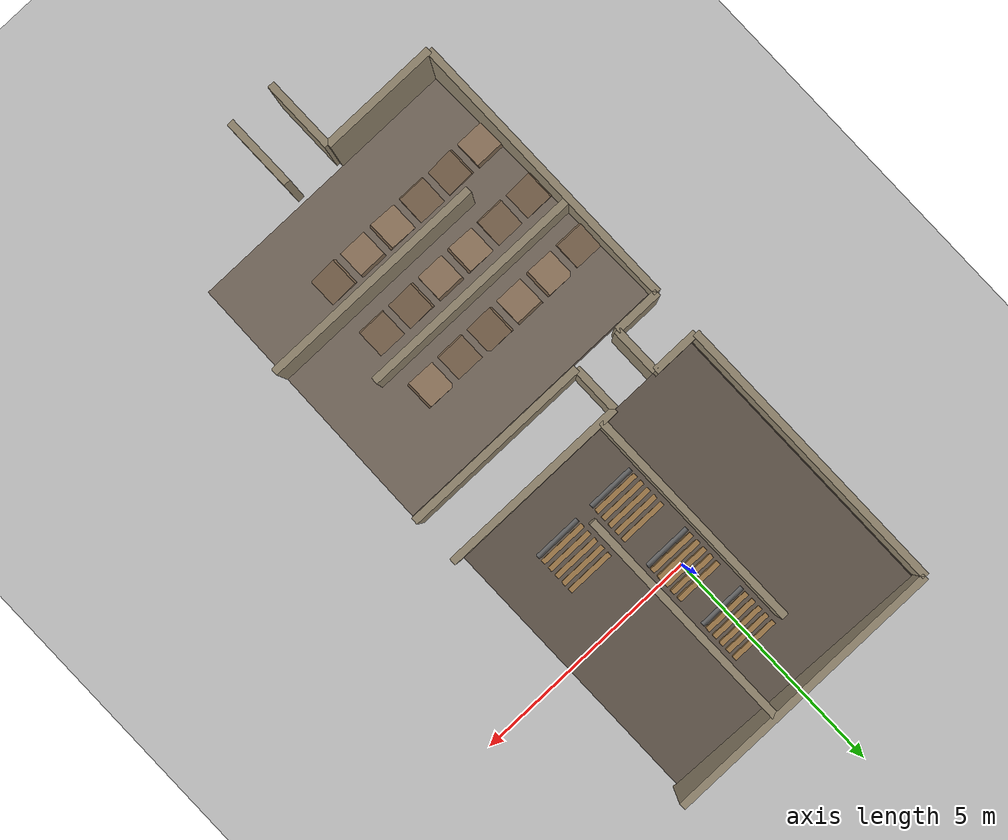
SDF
<sdf version="1.6">
 <world name="lrc_2025_atlanta">
  <model name="ground_plane">
   <static>true</static>
   <link name="link">
    <collision name="collision">
     <geometry><plane><normal>0 0 1</normal><size>50 50</size></plane></geometry>
    </collision>
    <visual name="visual">
     <geometry><plane><normal>0 0 1</normal><size>50 50</size></plane></geometry>
     <material><ambient>0.8 0.8 0.8 1</ambient><diffuse>0.8 0.8 0.8 1</diffuse></material>
    </visual>
   </link>
  </model>
  <model name="LA_S_a">
   <static>true</static>
   <pose>-1.7500 -10.0000 1.2500 0.0000 0.0000 0.0000</pose>
   <link name="link">
    <collision name="col"><geometry><box><size>2.5000 0.1500 2.5000</size></box></geometry></collision>
    <visual name="vis">
     <geometry><box><size>2.5000 0.1500 2.5000</size></box></geometry>
     <material><ambient>0.6 0.55 0.45 1.0</ambient><diffuse>0.6 0.55 0.45 1.0</diffuse></material>
    </visual>
   </link>
  </model>
  <model name="LA_N_a">
   <static>true</static>
   <pose>-2.5000 -4.0000 1.2500 0.0000 0.0000 0.0000</pose>
   <link name="link">
    <collision name="col"><geometry><box><size>1.0000 0.1500 2.5000</size></box></geometry></collision>
    <visual name="vis">
     <geometry><box><size>1.0000 0.1500 2.5000</size></box></geometry>
     <material><ambient>0.6 0.55 0.45 1.0</ambient><diffuse>0.6 0.55 0.45 1.0</diffuse></material>
    </visual>
   </link>
  </model>
  <model name="LA_N_b">
   <static>true</static>
   <pose>1.0000 -4.0000 1.2500 0.0000 0.0000 0.0000</pose>
   <link name="link">
    <collision name="col"><geometry><box><size>4.0000 0.1500 2.5000</size></box></geometry></collision>
    <visual name="vis">
     <geometry><box><size>4.0000 0.1500 2.5000</size></box></geometry>
     <material><ambient>0.6 0.55 0.45 1.0</ambient><diffuse>0.6 0.55 0.45 1.0</diffuse></material>
    </visual>
   </link>
  </model>
  <model name="LA_W">
   <static>true</static>
   <pose>-3.0000 -7.0000 1.2500 0.0000 0.0000 0.0000</pose>
   <link name="link">
    <collision name="col"><geometry><box><size>0.1500 6.0000 2.5000</size></box></geometry></collision>
    <visual name="vis">
     <geometry><box><size>0.1500 6.0000 2.5000</size></box></geometry>
     <material><ambient>0.6 0.55 0.45 1.0</ambient><diffuse>0.6 0.55 0.45 1.0</diffuse></material>
    </visual>
   </link>
  </model>
  <model name="LA_d0">
   <static>true</static>
   <pose>0.6000 -7.6750 1.2500 0.0000 0.0000 0.0000</pose>
   <link name="link">
    <collision name="col"><geometry><box><size>4.8000 0.1500 2.5000</size></box></geometry></collision>
    <visual name="vis">
     <geometry><box><size>4.8000 0.1500 2.5000</size></box></geometry>
     <material><ambient>0.6 0.55 0.45 1.0</ambient><diffuse>0.6 0.55 0.45 1.0</diffuse></material>
    </visual>
   </link>
  </model>
  <model name="LA_d1">
   <static>true</static>
   <pose>-0.6000 -6.3250 1.2500 0.0000 0.0000 0.0000</pose>
   <link name="link">
    <collision name="col"><geometry><box><size>4.8000 0.1500 2.5000</size></box></geometry></collision>
    <visual name="vis">
     <geometry><box><size>4.8000 0.1500 2.5000</size></box></geometry>
     <material><ambient>0.6 0.55 0.45 1.0</ambient><diffuse>0.6 0.55 0.45 1.0</diffuse></material>
    </visual>
   </link>
  </model>
  <model name="LA_floor">
   <static>true</static>
   <pose>0 -7 0.8248 0.2618 0 0</pose>
   <link name="link">
    <collision name="col"><geometry><box><size>6.0000 6.0000 0.1000</size></box></geometry></collision>
    <visual name="vis">
     <geometry><box><size>6.0000 6.0000 0.1000</size></box></geometry>
     <material><ambient>0.45 0.4 0.35 1.0</ambient><diffuse>0.45 0.4 0.35 1.0</diffuse></material>
    </visual>
   </link>
  </model>
  <model name="ramp_0_0">
   <static>true</static>
   <pose>-2.6250 -8.3500 0.6036 0.2618 0 0</pose>
   <link name="link">
    <collision name="col"><geometry><box><size>0.6000 0.6000 0.1600</size></box></geometry></collision>
    <visual name="vis">
     <geometry><box><size>0.6000 0.6000 0.1600</size></box></geometry>
     <material><ambient>0.55 0.45 0.35 1.0</ambient><diffuse>0.55 0.45 0.35 1.0</diffuse></material>
    </visual>
   </link>
  </model>
  <model name="ramp_0_1">
   <static>true</static>
   <pose>-1.8750 -8.3500 0.6036 0 0.2618 0</pose>
   <link name="link">
    <collision name="col"><geometry><box><size>0.6000 0.6000 0.1600</size></box></geometry></collision>
    <visual name="vis">
     <geometry><box><size>0.6000 0.6000 0.1600</size></box></geometry>
     <material><ambient>0.55 0.45 0.35 1.0</ambient><diffuse>0.55 0.45 0.35 1.0</diffuse></material>
    </visual>
   </link>
  </model>
  <model name="ramp_0_2">
   <static>true</static>
   <pose>-1.1250 -8.3500 0.6036 -0.2618 0 0</pose>
   <link name="link">
    <collision name="col"><geometry><box><size>0.6000 0.6000 0.1600</size></box></geometry></collision>
    <visual name="vis">
     <geometry><box><size>0.6000 0.6000 0.1600</size></box></geometry>
     <material><ambient>0.55 0.45 0.35 1.0</ambient><diffuse>0.55 0.45 0.35 1.0</diffuse></material>
    </visual>
   </link>
  </model>
  <model name="ramp_0_3">
   <static>true</static>
   <pose>-0.3750 -8.3500 0.6036 0 -0.2618 0</pose>
   <link name="link">
    <collision name="col"><geometry><box><size>0.6000 0.6000 0.1600</size></box></geometry></collision>
    <visual name="vis">
     <geometry><box><size>0.6000 0.6000 0.1600</size></box></geometry>
     <material><ambient>0.55 0.45 0.35 1.0</ambient><diffuse>0.55 0.45 0.35 1.0</diffuse></material>
    </visual>
   </link>
  </model>
  <model name="ramp_0_4">
   <static>true</static>
   <pose>0.3750 -8.3500 0.6036 0.2618 0 0</pose>
   <link name="link">
    <collision name="col"><geometry><box><size>0.6000 0.6000 0.1600</size></box></geometry></collision>
    <visual name="vis">
     <geometry><box><size>0.6000 0.6000 0.1600</size></box></geometry>
     <material><ambient>0.55 0.45 0.35 1.0</ambient><diffuse>0.55 0.45 0.35 1.0</diffuse></material>
    </visual>
   </link>
  </model>
  <model name="ramp_0_5">
   <static>true</static>
   <pose>1.1250 -8.3500 0.6036 0 0.2618 0</pose>
   <link name="link">
    <collision name="col"><geometry><box><size>0.6000 0.6000 0.1600</size></box></geometry></collision>
    <visual name="vis">
     <geometry><box><size>0.6000 0.6000 0.1600</size></box></geometry>
     <material><ambient>0.55 0.45 0.35 1.0</ambient><diffuse>0.55 0.45 0.35 1.0</diffuse></material>
    </visual>
   </link>
  </model>
  <model name="ramp_1_0">
   <static>true</static>
   <pose>-2.6250 -7.0000 0.9530 0 0.2618 0</pose>
   <link name="link">
    <collision name="col"><geometry><box><size>0.6000 0.6000 0.1600</size></box></geometry></collision>
    <visual name="vis">
     <geometry><box><size>0.6000 0.6000 0.1600</size></box></geometry>
     <material><ambient>0.55 0.45 0.35 1.0</ambient><diffuse>0.55 0.45 0.35 1.0</diffuse></material>
    </visual>
   </link>
  </model>
  <model name="ramp_1_1">
   <static>true</static>
   <pose>-1.8750 -7.0000 0.9530 -0.2618 0 0</pose>
   <link name="link">
    <collision name="col"><geometry><box><size>0.6000 0.6000 0.1600</size></box></geometry></collision>
    <visual name="vis">
     <geometry><box><size>0.6000 0.6000 0.1600</size></box></geometry>
     <material><ambient>0.55 0.45 0.35 1.0</ambient><diffuse>0.55 0.45 0.35 1.0</diffuse></material>
    </visual>
   </link>
  </model>
  <model name="ramp_1_2">
   <static>true</static>
   <pose>-1.1250 -7.0000 0.9530 0 -0.2618 0</pose>
   <link name="link">
    <collision name="col"><geometry><box><size>0.6000 0.6000 0.1600</size></box></geometry></collision>
    <visual name="vis">
     <geometry><box><size>0.6000 0.6000 0.1600</size></box></geometry>
     <material><ambient>0.55 0.45 0.35 1.0</ambient><diffuse>0.55 0.45 0.35 1.0</diffuse></material>
    </visual>
   </link>
  </model>
  <model name="ramp_1_3">
   <static>true</static>
   <pose>-0.3750 -7.0000 0.9530 0.2618 0 0</pose>
   <link name="link">
    <collision name="col"><geometry><box><size>0.6000 0.6000 0.1600</size></box></geometry></collision>
    <visual name="vis">
     <geometry><box><size>0.6000 0.6000 0.1600</size></box></geometry>
     <material><ambient>0.55 0.45 0.35 1.0</ambient><diffuse>0.55 0.45 0.35 1.0</diffuse></material>
    </visual>
   </link>
  </model>
  <model name="ramp_1_4">
   <static>true</static>
   <pose>0.3750 -7.0000 0.9530 0 0.2618 0</pose>
   <link name="link">
    <collision name="col"><geometry><box><size>0.6000 0.6000 0.1600</size></box></geometry></collision>
    <visual name="vis">
     <geometry><box><size>0.6000 0.6000 0.1600</size></box></geometry>
     <material><ambient>0.55 0.45 0.35 1.0</ambient><diffuse>0.55 0.45 0.35 1.0</diffuse></material>
    </visual>
   </link>
  </model>
  <model name="ramp_1_5">
   <static>true</static>
   <pose>1.1250 -7.0000 0.9530 -0.2618 0 0</pose>
   <link name="link">
    <collision name="col"><geometry><box><size>0.6000 0.6000 0.1600</size></box></geometry></collision>
    <visual name="vis">
     <geometry><box><size>0.6000 0.6000 0.1600</size></box></geometry>
     <material><ambient>0.55 0.45 0.35 1.0</ambient><diffuse>0.55 0.45 0.35 1.0</diffuse></material>
    </visual>
   </link>
  </model>
  <model name="ramp_2_0">
   <static>true</static>
   <pose>-2.6250 -5.6500 1.3025 -0.2618 0 0</pose>
   <link name="link">
    <collision name="col"><geometry><box><size>0.6000 0.6000 0.1600</size></box></geometry></collision>
    <visual name="vis">
     <geometry><box><size>0.6000 0.6000 0.1600</size></box></geometry>
     <material><ambient>0.55 0.45 0.35 1.0</ambient><diffuse>0.55 0.45 0.35 1.0</diffuse></material>
    </visual>
   </link>
  </model>
  <model name="ramp_2_1">
   <static>true</static>
   <pose>-1.8750 -5.6500 1.3025 0 -0.2618 0</pose>
   <link name="link">
    <collision name="col"><geometry><box><size>0.6000 0.6000 0.1600</size></box></geometry></collision>
    <visual name="vis">
     <geometry><box><size>0.6000 0.6000 0.1600</size></box></geometry>
     <material><ambient>0.55 0.45 0.35 1.0</ambient><diffuse>0.55 0.45 0.35 1.0</diffuse></material>
    </visual>
   </link>
  </model>
  <model name="ramp_2_2">
   <static>true</static>
   <pose>-1.1250 -5.6500 1.3025 0.2618 0 0</pose>
   <link name="link">
    <collision name="col"><geometry><box><size>0.6000 0.6000 0.1600</size></box></geometry></collision>
    <visual name="vis">
     <geometry><box><size>0.6000 0.6000 0.1600</size></box></geometry>
     <material><ambient>0.55 0.45 0.35 1.0</ambient><diffuse>0.55 0.45 0.35 1.0</diffuse></material>
    </visual>
   </link>
  </model>
  <model name="ramp_2_3">
   <static>true</static>
   <pose>-0.3750 -5.6500 1.3025 0 0.2618 0</pose>
   <link name="link">
    <collision name="col"><geometry><box><size>0.6000 0.6000 0.1600</size></box></geometry></collision>
    <visual name="vis">
     <geometry><box><size>0.6000 0.6000 0.1600</size></box></geometry>
     <material><ambient>0.55 0.45 0.35 1.0</ambient><diffuse>0.55 0.45 0.35 1.0</diffuse></material>
    </visual>
   </link>
  </model>
  <model name="ramp_2_4">
   <static>true</static>
   <pose>0.3750 -5.6500 1.3025 -0.2618 0 0</pose>
   <link name="link">
    <collision name="col"><geometry><box><size>0.6000 0.6000 0.1600</size></box></geometry></collision>
    <visual name="vis">
     <geometry><box><size>0.6000 0.6000 0.1600</size></box></geometry>
     <material><ambient>0.55 0.45 0.35 1.0</ambient><diffuse>0.55 0.45 0.35 1.0</diffuse></material>
    </visual>
   </link>
  </model>
  <model name="ramp_2_5">
   <static>true</static>
   <pose>1.1250 -5.6500 1.3025 0 -0.2618 0</pose>
   <link name="link">
    <collision name="col"><geometry><box><size>0.6000 0.6000 0.1600</size></box></geometry></collision>
    <visual name="vis">
     <geometry><box><size>0.6000 0.6000 0.1600</size></box></geometry>
     <material><ambient>0.55 0.45 0.35 1.0</ambient><diffuse>0.55 0.45 0.35 1.0</diffuse></material>
    </visual>
   </link>
  </model>
  <model name="qr_A">
   <static>true</static>
   <pose>-2.8500 -7 0.6000 0.0000 0.0000 0.0000</pose>
   <link name="link">
    <collision name="col"><geometry><box><size>0.0200 0.1500 0.1500</size></box></geometry></collision>
    <visual name="vis">
     <geometry><box><size>0.0200 0.1500 0.1500</size></box></geometry>
     <material><ambient>0.0 0.8 0.0 1.0</ambient><diffuse>0.0 0.8 0.0 1.0</diffuse></material>
    </visual>
   </link>
  </model>
  <model name="LC_S_a">
   <static>true</static>
   <pose>-2.5000 -3.0000 1.2500 0.0000 0.0000 0.0000</pose>
   <link name="link">
    <collision name="col"><geometry><box><size>1.0000 0.1500 2.5000</size></box></geometry></collision>
    <visual name="vis">
     <geometry><box><size>1.0000 0.1500 2.5000</size></box></geometry>
     <material><ambient>0.6 0.55 0.45 1.0</ambient><diffuse>0.6 0.55 0.45 1.0</diffuse></material>
    </visual>
   </link>
  </model>
  <model name="LC_S_b">
   <static>true</static>
   <pose>1.0000 -3.0000 1.2500 0.0000 0.0000 0.0000</pose>
   <link name="link">
    <collision name="col"><geometry><box><size>4.0000 0.1500 2.5000</size></box></geometry></collision>
    <visual name="vis">
     <geometry><box><size>4.0000 0.1500 2.5000</size></box></geometry>
     <material><ambient>0.6 0.55 0.45 1.0</ambient><diffuse>0.6 0.55 0.45 1.0</diffuse></material>
    </visual>
   </link>
  </model>
  <model name="LC_N">
   <static>true</static>
   <pose>0.0000 3.0000 1.2500 0.0000 0.0000 0.0000</pose>
   <link name="link">
    <collision name="col"><geometry><box><size>6.0000 0.1500 2.5000</size></box></geometry></collision>
    <visual name="vis">
     <geometry><box><size>6.0000 0.1500 2.5000</size></box></geometry>
     <material><ambient>0.6 0.55 0.45 1.0</ambient><diffuse>0.6 0.55 0.45 1.0</diffuse></material>
    </visual>
   </link>
  </model>
  <model name="LC_W">
   <static>true</static>
   <pose>-3.0000 0.0000 1.2500 0.0000 0.0000 0.0000</pose>
   <link name="link">
    <collision name="col"><geometry><box><size>0.1500 6.0000 2.5000</size></box></geometry></collision>
    <visual name="vis">
     <geometry><box><size>0.1500 6.0000 2.5000</size></box></geometry>
     <material><ambient>0.6 0.55 0.45 1.0</ambient><diffuse>0.6 0.55 0.45 1.0</diffuse></material>
    </visual>
   </link>
  </model>
  <model name="LC_d0">
   <static>true</static>
   <pose>-0.6750 -0.6000 1.2500 0.0000 0.0000 0.0000</pose>
   <link name="link">
    <collision name="col"><geometry><box><size>0.1500 4.8000 2.5000</size></box></geometry></collision>
    <visual name="vis">
     <geometry><box><size>0.1500 4.8000 2.5000</size></box></geometry>
     <material><ambient>0.6 0.55 0.45 1.0</ambient><diffuse>0.6 0.55 0.45 1.0</diffuse></material>
    </visual>
   </link>
  </model>
  <model name="LC_d1">
   <static>true</static>
   <pose>0.6750 0.6000 1.2500 0.0000 0.0000 0.0000</pose>
   <link name="link">
    <collision name="col"><geometry><box><size>0.1500 4.8000 2.5000</size></box></geometry></collision>
    <visual name="vis">
     <geometry><box><size>0.1500 4.8000 2.5000</size></box></geometry>
     <material><ambient>0.6 0.55 0.45 1.0</ambient><diffuse>0.6 0.55 0.45 1.0</diffuse></material>
    </visual>
   </link>
  </model>
  <model name="LC_floor">
   <static>true</static>
   <pose>0 0 0.8248 0 0.2618 0</pose>
   <link name="link">
    <collision name="col"><geometry><box><size>6.0000 6.0000 0.1000</size></box></geometry></collision>
    <visual name="vis">
     <geometry><box><size>6.0000 6.0000 0.1000</size></box></geometry>
     <material><ambient>0.45 0.4 0.35 1.0</ambient><diffuse>0.45 0.4 0.35 1.0</diffuse></material>
    </visual>
   </link>
  </model>
  <model name="plt_0_0_0">
   <static>true</static>
   <pose>-1.3500 -1.8600 0.6236 0.0000 0.0000 0.0000</pose>
   <link name="link">
    <collision name="col"><geometry><box><size>1.0000 0.1000 0.2000</size></box></geometry></collision>
    <visual name="vis">
     <geometry><box><size>1.0000 0.1000 0.2000</size></box></geometry>
     <material><ambient>0.65 0.5 0.3 1.0</ambient><diffuse>0.65 0.5 0.3 1.0</diffuse></material>
    </visual>
   </link>
  </model>
  <model name="plt_0_0_1">
   <static>true</static>
   <pose>-1.3500 -1.6800 0.6236 0.0000 0.0000 0.0000</pose>
   <link name="link">
    <collision name="col"><geometry><box><size>1.0000 0.1000 0.2000</size></box></geometry></collision>
    <visual name="vis">
     <geometry><box><size>1.0000 0.1000 0.2000</size></box></geometry>
     <material><ambient>0.65 0.5 0.3 1.0</ambient><diffuse>0.65 0.5 0.3 1.0</diffuse></material>
    </visual>
   </link>
  </model>
  <model name="plt_0_0_2">
   <static>true</static>
   <pose>-1.3500 -1.5000 0.6236 0.0000 0.0000 0.0000</pose>
   <link name="link">
    <collision name="col"><geometry><box><size>1.0000 0.1000 0.2000</size></box></geometry></collision>
    <visual name="vis">
     <geometry><box><size>1.0000 0.1000 0.2000</size></box></geometry>
     <material><ambient>0.65 0.5 0.3 1.0</ambient><diffuse>0.65 0.5 0.3 1.0</diffuse></material>
    </visual>
   </link>
  </model>
  <model name="plt_0_0_3">
   <static>true</static>
   <pose>-1.3500 -1.3200 0.6236 0.0000 0.0000 0.0000</pose>
   <link name="link">
    <collision name="col"><geometry><box><size>1.0000 0.1000 0.2000</size></box></geometry></collision>
    <visual name="vis">
     <geometry><box><size>1.0000 0.1000 0.2000</size></box></geometry>
     <material><ambient>0.65 0.5 0.3 1.0</ambient><diffuse>0.65 0.5 0.3 1.0</diffuse></material>
    </visual>
   </link>
  </model>
  <model name="plt_0_0_4">
   <static>true</static>
   <pose>-1.3500 -1.1400 0.6236 0.0000 0.0000 0.0000</pose>
   <link name="link">
    <collision name="col"><geometry><box><size>1.0000 0.1000 0.2000</size></box></geometry></collision>
    <visual name="vis">
     <geometry><box><size>1.0000 0.1000 0.2000</size></box></geometry>
     <material><ambient>0.65 0.5 0.3 1.0</ambient><diffuse>0.65 0.5 0.3 1.0</diffuse></material>
    </visual>
   </link>
  </model>
  <model name="pipe_0_0">
   <static>true</static>
   <pose>-1.3500 -2.0000 0.7736 0 1.5708 0</pose>
   <link name="link">
    <collision name="col">
     <geometry><cylinder><radius>0.05</radius><length>1.0</length></cylinder></geometry>
    </collision>
    <visual name="vis">
     <geometry><cylinder><radius>0.05</radius><length>1.0</length></cylinder></geometry>
     <material><ambient>0.4 0.4 0.4 1.0</ambient><diffuse>0.4 0.4 0.4 1.0</diffuse></material>
    </visual>
   </link>
  </model>
  <model name="plt_0_1_0">
   <static>true</static>
   <pose>-1.3500 -0.3600 0.7236 0.0000 0.0000 0.0000</pose>
   <link name="link">
    <collision name="col"><geometry><box><size>1.0000 0.1000 0.4000</size></box></geometry></collision>
    <visual name="vis">
     <geometry><box><size>1.0000 0.1000 0.4000</size></box></geometry>
     <material><ambient>0.65 0.5 0.3 1.0</ambient><diffuse>0.65 0.5 0.3 1.0</diffuse></material>
    </visual>
   </link>
  </model>
  <model name="plt_0_1_1">
   <static>true</static>
   <pose>-1.3500 -0.1800 0.7236 0.0000 0.0000 0.0000</pose>
   <link name="link">
    <collision name="col"><geometry><box><size>1.0000 0.1000 0.4000</size></box></geometry></collision>
    <visual name="vis">
     <geometry><box><size>1.0000 0.1000 0.4000</size></box></geometry>
     <material><ambient>0.65 0.5 0.3 1.0</ambient><diffuse>0.65 0.5 0.3 1.0</diffuse></material>
    </visual>
   </link>
  </model>
  <model name="plt_0_1_2">
   <static>true</static>
   <pose>-1.3500 0.0000 0.7236 0.0000 0.0000 0.0000</pose>
   <link name="link">
    <collision name="col"><geometry><box><size>1.0000 0.1000 0.4000</size></box></geometry></collision>
    <visual name="vis">
     <geometry><box><size>1.0000 0.1000 0.4000</size></box></geometry>
     <material><ambient>0.65 0.5 0.3 1.0</ambient><diffuse>0.65 0.5 0.3 1.0</diffuse></material>
    </visual>
   </link>
  </model>
  <model name="plt_0_1_3">
   <static>true</static>
   <pose>-1.3500 0.1800 0.7236 0.0000 0.0000 0.0000</pose>
   <link name="link">
    <collision name="col"><geometry><box><size>1.0000 0.1000 0.4000</size></box></geometry></collision>
    <visual name="vis">
     <geometry><box><size>1.0000 0.1000 0.4000</size></box></geometry>
     <material><ambient>0.65 0.5 0.3 1.0</ambient><diffuse>0.65 0.5 0.3 1.0</diffuse></material>
    </visual>
   </link>
  </model>
  <model name="plt_0_1_4">
   <static>true</static>
   <pose>-1.3500 0.3600 0.7236 0.0000 0.0000 0.0000</pose>
   <link name="link">
    <collision name="col"><geometry><box><size>1.0000 0.1000 0.4000</size></box></geometry></collision>
    <visual name="vis">
     <geometry><box><size>1.0000 0.1000 0.4000</size></box></geometry>
     <material><ambient>0.65 0.5 0.3 1.0</ambient><diffuse>0.65 0.5 0.3 1.0</diffuse></material>
    </visual>
   </link>
  </model>
  <model name="pipe_0_1">
   <static>true</static>
   <pose>-1.3500 -0.5000 0.9736 0 1.5708 0</pose>
   <link name="link">
    <collision name="col">
     <geometry><cylinder><radius>0.05</radius><length>1.0</length></cylinder></geometry>
    </collision>
    <visual name="vis">
     <geometry><cylinder><radius>0.05</radius><length>1.0</length></cylinder></geometry>
     <material><ambient>0.4 0.4 0.4 1.0</ambient><diffuse>0.4 0.4 0.4 1.0</diffuse></material>
    </visual>
   </link>
  </model>
  <model name="plt_0_2_0">
   <static>true</static>
   <pose>-1.3500 1.1400 0.6236 0.0000 0.0000 0.0000</pose>
   <link name="link">
    <collision name="col"><geometry><box><size>1.0000 0.1000 0.2000</size></box></geometry></collision>
    <visual name="vis">
     <geometry><box><size>1.0000 0.1000 0.2000</size></box></geometry>
     <material><ambient>0.65 0.5 0.3 1.0</ambient><diffuse>0.65 0.5 0.3 1.0</diffuse></material>
    </visual>
   </link>
  </model>
  <model name="plt_0_2_1">
   <static>true</static>
   <pose>-1.3500 1.3200 0.6236 0.0000 0.0000 0.0000</pose>
   <link name="link">
    <collision name="col"><geometry><box><size>1.0000 0.1000 0.2000</size></box></geometry></collision>
    <visual name="vis">
     <geometry><box><size>1.0000 0.1000 0.2000</size></box></geometry>
     <material><ambient>0.65 0.5 0.3 1.0</ambient><diffuse>0.65 0.5 0.3 1.0</diffuse></material>
    </visual>
   </link>
  </model>
  <model name="plt_0_2_2">
   <static>true</static>
   <pose>-1.3500 1.5000 0.6236 0.0000 0.0000 0.0000</pose>
   <link name="link">
    <collision name="col"><geometry><box><size>1.0000 0.1000 0.2000</size></box></geometry></collision>
    <visual name="vis">
     <geometry><box><size>1.0000 0.1000 0.2000</size></box></geometry>
     <material><ambient>0.65 0.5 0.3 1.0</ambient><diffuse>0.65 0.5 0.3 1.0</diffuse></material>
    </visual>
   </link>
  </model>
  <model name="plt_0_2_3">
   <static>true</static>
   <pose>-1.3500 1.6800 0.6236 0.0000 0.0000 0.0000</pose>
   <link name="link">
    <collision name="col"><geometry><box><size>1.0000 0.1000 0.2000</size></box></geometry></collision>
    <visual name="vis">
     <geometry><box><size>1.0000 0.1000 0.2000</size></box></geometry>
     <material><ambient>0.65 0.5 0.3 1.0</ambient><diffuse>0.65 0.5 0.3 1.0</diffuse></material>
    </visual>
   </link>
  </model>
  <model name="plt_0_2_4">
   <static>true</static>
   <pose>-1.3500 1.8600 0.6236 0.0000 0.0000 0.0000</pose>
   <link name="link">
    <collision name="col"><geometry><box><size>1.0000 0.1000 0.2000</size></box></geometry></collision>
    <visual name="vis">
     <geometry><box><size>1.0000 0.1000 0.2000</size></box></geometry>
     <material><ambient>0.65 0.5 0.3 1.0</ambient><diffuse>0.65 0.5 0.3 1.0</diffuse></material>
    </visual>
   </link>
  </model>
  <model name="pipe_0_2">
   <static>true</static>
   <pose>-1.3500 1.0000 0.7736 0 1.5708 0</pose>
   <link name="link">
    <collision name="col">
     <geometry><cylinder><radius>0.05</radius><length>1.0</length></cylinder></geometry>
    </collision>
    <visual name="vis">
     <geometry><cylinder><radius>0.05</radius><length>1.0</length></cylinder></geometry>
     <material><ambient>0.4 0.4 0.4 1.0</ambient><diffuse>0.4 0.4 0.4 1.0</diffuse></material>
    </visual>
   </link>
  </model>
  <model name="plt_1_0_0">
   <static>true</static>
   <pose>0.0000 -1.8600 0.9730 0.0000 0.0000 0.0000</pose>
   <link name="link">
    <collision name="col"><geometry><box><size>1.0000 0.1000 0.2000</size></box></geometry></collision>
    <visual name="vis">
     <geometry><box><size>1.0000 0.1000 0.2000</size></box></geometry>
     <material><ambient>0.65 0.5 0.3 1.0</ambient><diffuse>0.65 0.5 0.3 1.0</diffuse></material>
    </visual>
   </link>
  </model>
  <model name="plt_1_0_1">
   <static>true</static>
   <pose>0.0000 -1.6800 0.9730 0.0000 0.0000 0.0000</pose>
   <link name="link">
    <collision name="col"><geometry><box><size>1.0000 0.1000 0.2000</size></box></geometry></collision>
    <visual name="vis">
     <geometry><box><size>1.0000 0.1000 0.2000</size></box></geometry>
     <material><ambient>0.65 0.5 0.3 1.0</ambient><diffuse>0.65 0.5 0.3 1.0</diffuse></material>
    </visual>
   </link>
  </model>
  <model name="plt_1_0_2">
   <static>true</static>
   <pose>0.0000 -1.5000 0.9730 0.0000 0.0000 0.0000</pose>
   <link name="link">
    <collision name="col"><geometry><box><size>1.0000 0.1000 0.2000</size></box></geometry></collision>
    <visual name="vis">
     <geometry><box><size>1.0000 0.1000 0.2000</size></box></geometry>
     <material><ambient>0.65 0.5 0.3 1.0</ambient><diffuse>0.65 0.5 0.3 1.0</diffuse></material>
    </visual>
   </link>
  </model>
  <model name="plt_1_0_3">
   <static>true</static>
   <pose>0.0000 -1.3200 0.9730 0.0000 0.0000 0.0000</pose>
   <link name="link">
    <collision name="col"><geometry><box><size>1.0000 0.1000 0.2000</size></box></geometry></collision>
    <visual name="vis">
     <geometry><box><size>1.0000 0.1000 0.2000</size></box></geometry>
     <material><ambient>0.65 0.5 0.3 1.0</ambient><diffuse>0.65 0.5 0.3 1.0</diffuse></material>
    </visual>
   </link>
  </model>
  <model name="plt_1_0_4">
   <static>true</static>
   <pose>0.0000 -1.1400 0.9730 0.0000 0.0000 0.0000</pose>
   <link name="link">
    <collision name="col"><geometry><box><size>1.0000 0.1000 0.2000</size></box></geometry></collision>
    <visual name="vis">
     <geometry><box><size>1.0000 0.1000 0.2000</size></box></geometry>
     <material><ambient>0.65 0.5 0.3 1.0</ambient><diffuse>0.65 0.5 0.3 1.0</diffuse></material>
    </visual>
   </link>
  </model>
  <model name="pipe_1_0">
   <static>true</static>
   <pose>0.0000 -2.0000 1.1230 0 1.5708 0</pose>
   <link name="link">
    <collision name="col">
     <geometry><cylinder><radius>0.05</radius><length>1.0</length></cylinder></geometry>
    </collision>
    <visual name="vis">
     <geometry><cylinder><radius>0.05</radius><length>1.0</length></cylinder></geometry>
     <material><ambient>0.4 0.4 0.4 1.0</ambient><diffuse>0.4 0.4 0.4 1.0</diffuse></material>
    </visual>
   </link>
  </model>
  <model name="plt_1_1_0">
   <static>true</static>
   <pose>0.0000 -0.3600 1.0730 0.0000 0.0000 0.0000</pose>
   <link name="link">
    <collision name="col"><geometry><box><size>1.0000 0.1000 0.4000</size></box></geometry></collision>
    <visual name="vis">
     <geometry><box><size>1.0000 0.1000 0.4000</size></box></geometry>
     <material><ambient>0.65 0.5 0.3 1.0</ambient><diffuse>0.65 0.5 0.3 1.0</diffuse></material>
    </visual>
   </link>
  </model>
  <model name="plt_1_1_1">
   <static>true</static>
   <pose>0.0000 -0.1800 1.0730 0.0000 0.0000 0.0000</pose>
   <link name="link">
    <collision name="col"><geometry><box><size>1.0000 0.1000 0.4000</size></box></geometry></collision>
    <visual name="vis">
     <geometry><box><size>1.0000 0.1000 0.4000</size></box></geometry>
     <material><ambient>0.65 0.5 0.3 1.0</ambient><diffuse>0.65 0.5 0.3 1.0</diffuse></material>
    </visual>
   </link>
  </model>
  <model name="plt_1_1_2">
   <static>true</static>
   <pose>0.0000 0.0000 1.0730 0.0000 0.0000 0.0000</pose>
   <link name="link">
    <collision name="col"><geometry><box><size>1.0000 0.1000 0.4000</size></box></geometry></collision>
    <visual name="vis">
     <geometry><box><size>1.0000 0.1000 0.4000</size></box></geometry>
     <material><ambient>0.65 0.5 0.3 1.0</ambient><diffuse>0.65 0.5 0.3 1.0</diffuse></material>
    </visual>
   </link>
  </model>
  <model name="plt_1_1_3">
   <static>true</static>
   <pose>0.0000 0.1800 1.0730 0.0000 0.0000 0.0000</pose>
   <link name="link">
    <collision name="col"><geometry><box><size>1.0000 0.1000 0.4000</size></box></geometry></collision>
    <visual name="vis">
     <geometry><box><size>1.0000 0.1000 0.4000</size></box></geometry>
     <material><ambient>0.65 0.5 0.3 1.0</ambient><diffuse>0.65 0.5 0.3 1.0</diffuse></material>
    </visual>
   </link>
  </model>
  <model name="plt_1_1_4">
   <static>true</static>
   <pose>0.0000 0.3600 1.0730 0.0000 0.0000 0.0000</pose>
   <link name="link">
    <collision name="col"><geometry><box><size>1.0000 0.1000 0.4000</size></box></geometry></collision>
    <visual name="vis">
     <geometry><box><size>1.0000 0.1000 0.4000</size></box></geometry>
     <material><ambient>0.65 0.5 0.3 1.0</ambient><diffuse>0.65 0.5 0.3 1.0</diffuse></material>
    </visual>
   </link>
  </model>
  <model name="pipe_1_1">
   <static>true</static>
   <pose>0.0000 -0.5000 1.3230 0 1.5708 0</pose>
   <link name="link">
    <collision name="col">
     <geometry><cylinder><radius>0.05</radius><length>1.0</length></cylinder></geometry>
    </collision>
    <visual name="vis">
     <geometry><cylinder><radius>0.05</radius><length>1.0</length></cylinder></geometry>
     <material><ambient>0.4 0.4 0.4 1.0</ambient><diffuse>0.4 0.4 0.4 1.0</diffuse></material>
    </visual>
   </link>
  </model>
  <model name="plt_1_2_0">
   <static>true</static>
   <pose>0.0000 1.1400 0.9730 0.0000 0.0000 0.0000</pose>
   <link name="link">
    <collision name="col"><geometry><box><size>1.0000 0.1000 0.2000</size></box></geometry></collision>
    <visual name="vis">
     <geometry><box><size>1.0000 0.1000 0.2000</size></box></geometry>
     <material><ambient>0.65 0.5 0.3 1.0</ambient><diffuse>0.65 0.5 0.3 1.0</diffuse></material>
    </visual>
   </link>
  </model>
  <model name="plt_1_2_1">
   <static>true</static>
   <pose>0.0000 1.3200 0.9730 0.0000 0.0000 0.0000</pose>
   <link name="link">
    <collision name="col"><geometry><box><size>1.0000 0.1000 0.2000</size></box></geometry></collision>
    <visual name="vis">
     <geometry><box><size>1.0000 0.1000 0.2000</size></box></geometry>
     <material><ambient>0.65 0.5 0.3 1.0</ambient><diffuse>0.65 0.5 0.3 1.0</diffuse></material>
    </visual>
   </link>
  </model>
  <model name="plt_1_2_2">
   <static>true</static>
   <pose>0.0000 1.5000 0.9730 0.0000 0.0000 0.0000</pose>
   <link name="link">
    <collision name="col"><geometry><box><size>1.0000 0.1000 0.2000</size></box></geometry></collision>
    <visual name="vis">
     <geometry><box><size>1.0000 0.1000 0.2000</size></box></geometry>
     <material><ambient>0.65 0.5 0.3 1.0</ambient><diffuse>0.65 0.5 0.3 1.0</diffuse></material>
    </visual>
   </link>
  </model>
  <model name="plt_1_2_3">
   <static>true</static>
   <pose>0.0000 1.6800 0.9730 0.0000 0.0000 0.0000</pose>
   <link name="link">
    <collision name="col"><geometry><box><size>1.0000 0.1000 0.2000</size></box></geometry></collision>
    <visual name="vis">
     <geometry><box><size>1.0000 0.1000 0.2000</size></box></geometry>
     <material><ambient>0.65 0.5 0.3 1.0</ambient><diffuse>0.65 0.5 0.3 1.0</diffuse></material>
    </visual>
   </link>
  </model>
  <model name="plt_1_2_4">
   <static>true</static>
   <pose>0.0000 1.8600 0.9730 0.0000 0.0000 0.0000</pose>
   <link name="link">
    <collision name="col"><geometry><box><size>1.0000 0.1000 0.2000</size></box></geometry></collision>
    <visual name="vis">
     <geometry><box><size>1.0000 0.1000 0.2000</size></box></geometry>
     <material><ambient>0.65 0.5 0.3 1.0</ambient><diffuse>0.65 0.5 0.3 1.0</diffuse></material>
    </visual>
   </link>
  </model>
  <model name="pipe_1_2">
   <static>true</static>
   <pose>0.0000 1.0000 1.1230 0 1.5708 0</pose>
   <link name="link">
    <collision name="col">
     <geometry><cylinder><radius>0.05</radius><length>1.0</length></cylinder></geometry>
    </collision>
    <visual name="vis">
     <geometry><cylinder><radius>0.05</radius><length>1.0</length></cylinder></geometry>
     <material><ambient>0.4 0.4 0.4 1.0</ambient><diffuse>0.4 0.4 0.4 1.0</diffuse></material>
    </visual>
   </link>
  </model>
  <model name="plt_2_0_0">
   <static>true</static>
   <pose>1.3500 -1.8600 1.3225 0.0000 0.0000 0.0000</pose>
   <link name="link">
    <collision name="col"><geometry><box><size>1.0000 0.1000 0.2000</size></box></geometry></collision>
    <visual name="vis">
     <geometry><box><size>1.0000 0.1000 0.2000</size></box></geometry>
     <material><ambient>0.65 0.5 0.3 1.0</ambient><diffuse>0.65 0.5 0.3 1.0</diffuse></material>
    </visual>
   </link>
  </model>
  <model name="plt_2_0_1">
   <static>true</static>
   <pose>1.3500 -1.6800 1.3225 0.0000 0.0000 0.0000</pose>
   <link name="link">
    <collision name="col"><geometry><box><size>1.0000 0.1000 0.2000</size></box></geometry></collision>
    <visual name="vis">
     <geometry><box><size>1.0000 0.1000 0.2000</size></box></geometry>
     <material><ambient>0.65 0.5 0.3 1.0</ambient><diffuse>0.65 0.5 0.3 1.0</diffuse></material>
    </visual>
   </link>
  </model>
  <model name="plt_2_0_2">
   <static>true</static>
   <pose>1.3500 -1.5000 1.3225 0.0000 0.0000 0.0000</pose>
   <link name="link">
    <collision name="col"><geometry><box><size>1.0000 0.1000 0.2000</size></box></geometry></collision>
    <visual name="vis">
     <geometry><box><size>1.0000 0.1000 0.2000</size></box></geometry>
     <material><ambient>0.65 0.5 0.3 1.0</ambient><diffuse>0.65 0.5 0.3 1.0</diffuse></material>
    </visual>
   </link>
  </model>
  <model name="plt_2_0_3">
   <static>true</static>
   <pose>1.3500 -1.3200 1.3225 0.0000 0.0000 0.0000</pose>
   <link name="link">
    <collision name="col"><geometry><box><size>1.0000 0.1000 0.2000</size></box></geometry></collision>
    <visual name="vis">
     <geometry><box><size>1.0000 0.1000 0.2000</size></box></geometry>
     <material><ambient>0.65 0.5 0.3 1.0</ambient><diffuse>0.65 0.5 0.3 1.0</diffuse></material>
    </visual>
   </link>
  </model>
  <model name="plt_2_0_4">
   <static>true</static>
   <pose>1.3500 -1.1400 1.3225 0.0000 0.0000 0.0000</pose>
   <link name="link">
    <collision name="col"><geometry><box><size>1.0000 0.1000 0.2000</size></box></geometry></collision>
    <visual name="vis">
     <geometry><box><size>1.0000 0.1000 0.2000</size></box></geometry>
     <material><ambient>0.65 0.5 0.3 1.0</ambient><diffuse>0.65 0.5 0.3 1.0</diffuse></material>
    </visual>
   </link>
  </model>
  <model name="pipe_2_0">
   <static>true</static>
   <pose>1.3500 -2.0000 1.4725 0 1.5708 0</pose>
   <link name="link">
    <collision name="col">
     <geometry><cylinder><radius>0.05</radius><length>1.0</length></cylinder></geometry>
    </collision>
    <visual name="vis">
     <geometry><cylinder><radius>0.05</radius><length>1.0</length></cylinder></geometry>
     <material><ambient>0.4 0.4 0.4 1.0</ambient><diffuse>0.4 0.4 0.4 1.0</diffuse></material>
    </visual>
   </link>
  </model>
  <model name="qr_C">
   <static>true</static>
   <pose>0 2.8500 0.6000 0.0000 0.0000 0.0000</pose>
   <link name="link">
    <collision name="col"><geometry><box><size>0.1500 0.0200 0.1500</size></box></geometry></collision>
    <visual name="vis">
     <geometry><box><size>0.1500 0.0200 0.1500</size></box></geometry>
     <material><ambient>0.0 0.8 0.0 1.0</ambient><diffuse>0.0 0.8 0.0 1.0</diffuse></material>
    </visual>
   </link>
  </model>
  <model name="haz_C">
   <static>true</static>
   <pose>-1.3500 1.5000 0.0600 0.0000 0.0000 0.0000</pose>
   <link name="link">
    <collision name="col"><geometry><box><size>0.1200 0.1200 0.1200</size></box></geometry></collision>
    <visual name="vis">
     <geometry><box><size>0.1200 0.1200 0.1200</size></box></geometry>
     <material><ambient>1.0 0.5 0.0 1.0</ambient><diffuse>1.0 0.5 0.0 1.0</diffuse></material>
    </visual>
   </link>
  </model>
  <model name="cor0_W">
   <static>true</static>
   <pose>-2.0000 -3.5000 1.2500 0.0000 0.0000 0.0000</pose>
   <link name="link">
    <collision name="col"><geometry><box><size>0.1500 1.0000 2.5000</size></box></geometry></collision>
    <visual name="vis">
     <geometry><box><size>0.1500 1.0000 2.5000</size></box></geometry>
     <material><ambient>0.6 0.55 0.45 1.0</ambient><diffuse>0.6 0.55 0.45 1.0</diffuse></material>
    </visual>
   </link>
  </model>
  <model name="cor0_E">
   <static>true</static>
   <pose>-1.0000 -3.5000 1.2500 0.0000 0.0000 0.0000</pose>
   <link name="link">
    <collision name="col"><geometry><box><size>0.1500 1.0000 2.5000</size></box></geometry></collision>
    <visual name="vis">
     <geometry><box><size>0.1500 1.0000 2.5000</size></box></geometry>
     <material><ambient>0.6 0.55 0.45 1.0</ambient><diffuse>0.6 0.55 0.45 1.0</diffuse></material>
    </visual>
   </link>
  </model>
  <model name="entry_W">
   <static>true</static>
   <pose>-0.5000 -10.7500 1.2500 0.0000 0.0000 0.0000</pose>
   <link name="link">
    <collision name="col"><geometry><box><size>0.1500 1.5000 2.5000</size></box></geometry></collision>
    <visual name="vis">
     <geometry><box><size>0.1500 1.5000 2.5000</size></box></geometry>
     <material><ambient>0.6 0.55 0.45 1.0</ambient><diffuse>0.6 0.55 0.45 1.0</diffuse></material>
    </visual>
   </link>
  </model>
  <model name="entry_E">
   <static>true</static>
   <pose>0.5000 -10.7500 1.2500 0.0000 0.0000 0.0000</pose>
   <link name="link">
    <collision name="col"><geometry><box><size>0.1500 1.5000 2.5000</size></box></geometry></collision>
    <visual name="vis">
     <geometry><box><size>0.1500 1.5000 2.5000</size></box></geometry>
     <material><ambient>0.6 0.55 0.45 1.0</ambient><diffuse>0.6 0.55 0.45 1.0</diffuse></material>
    </visual>
   </link>
  </model>
 </world>
</sdf>
